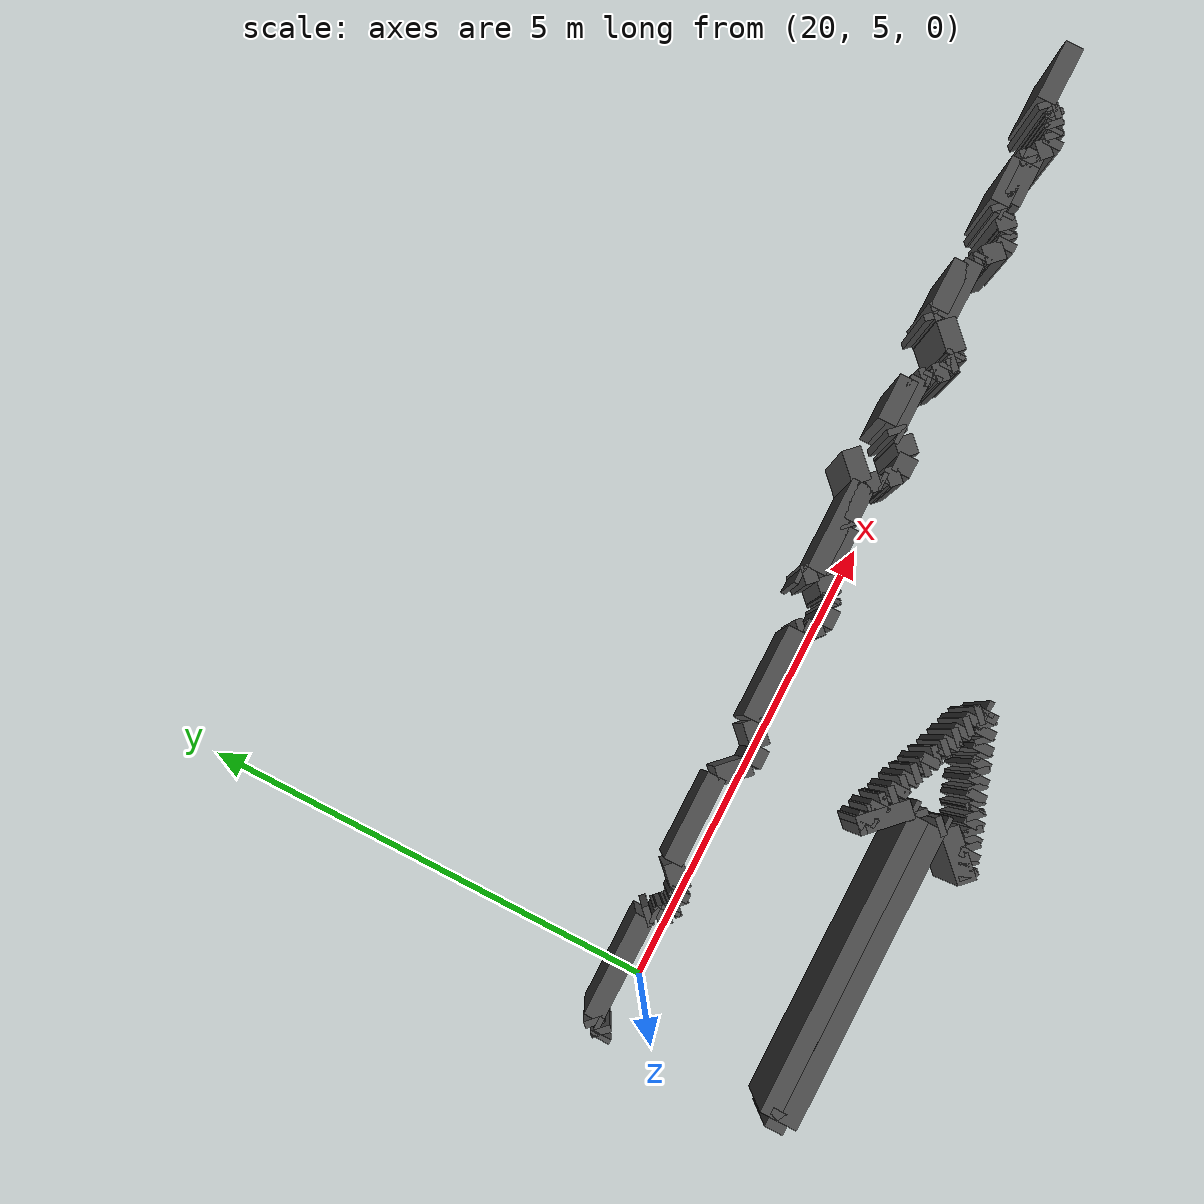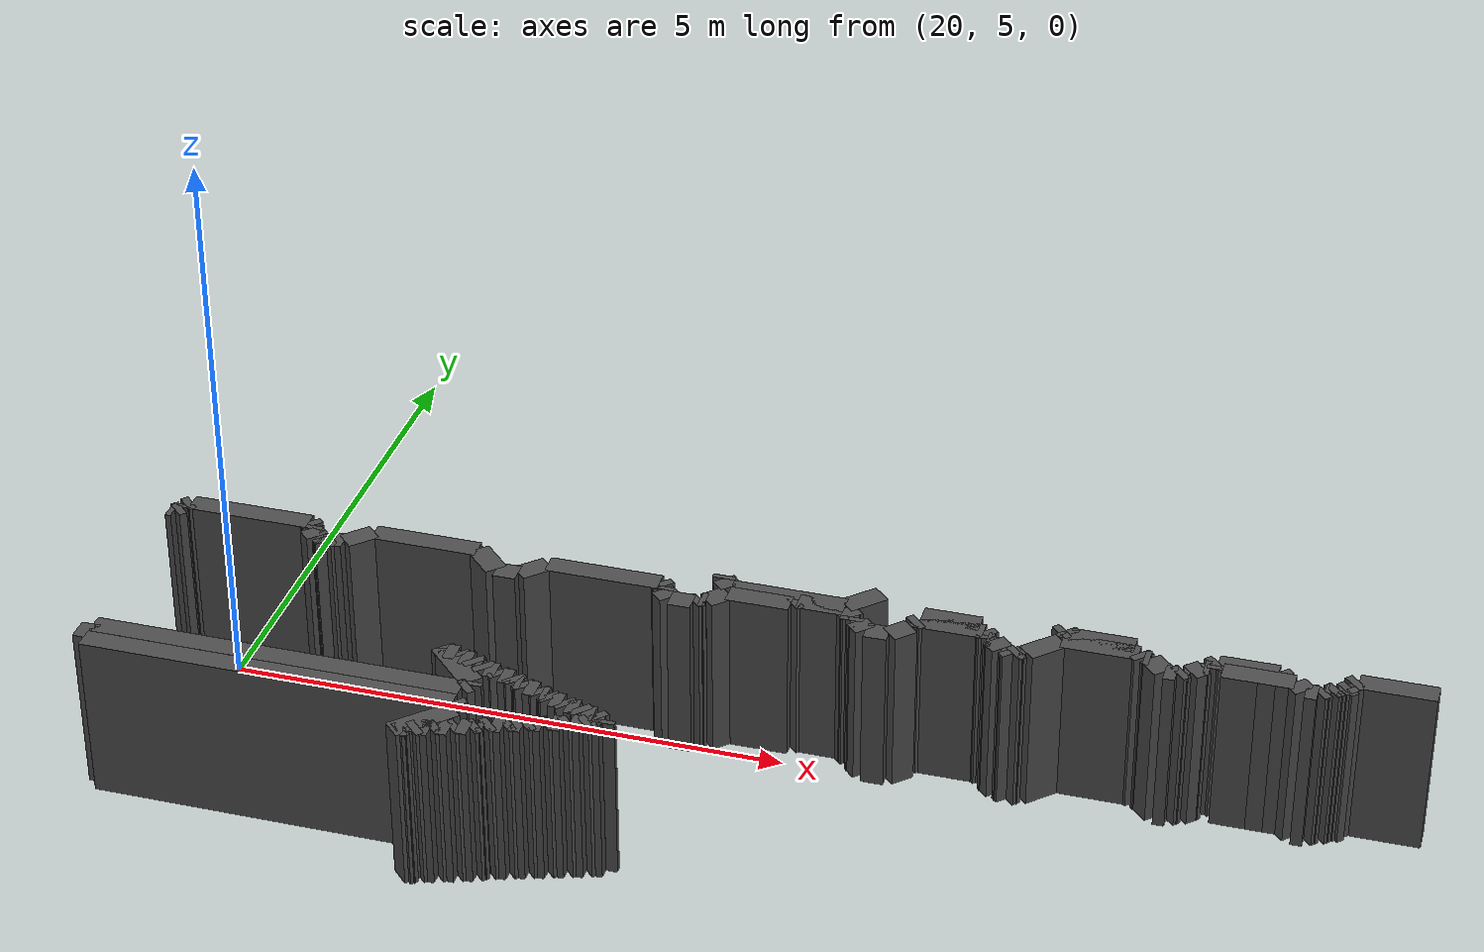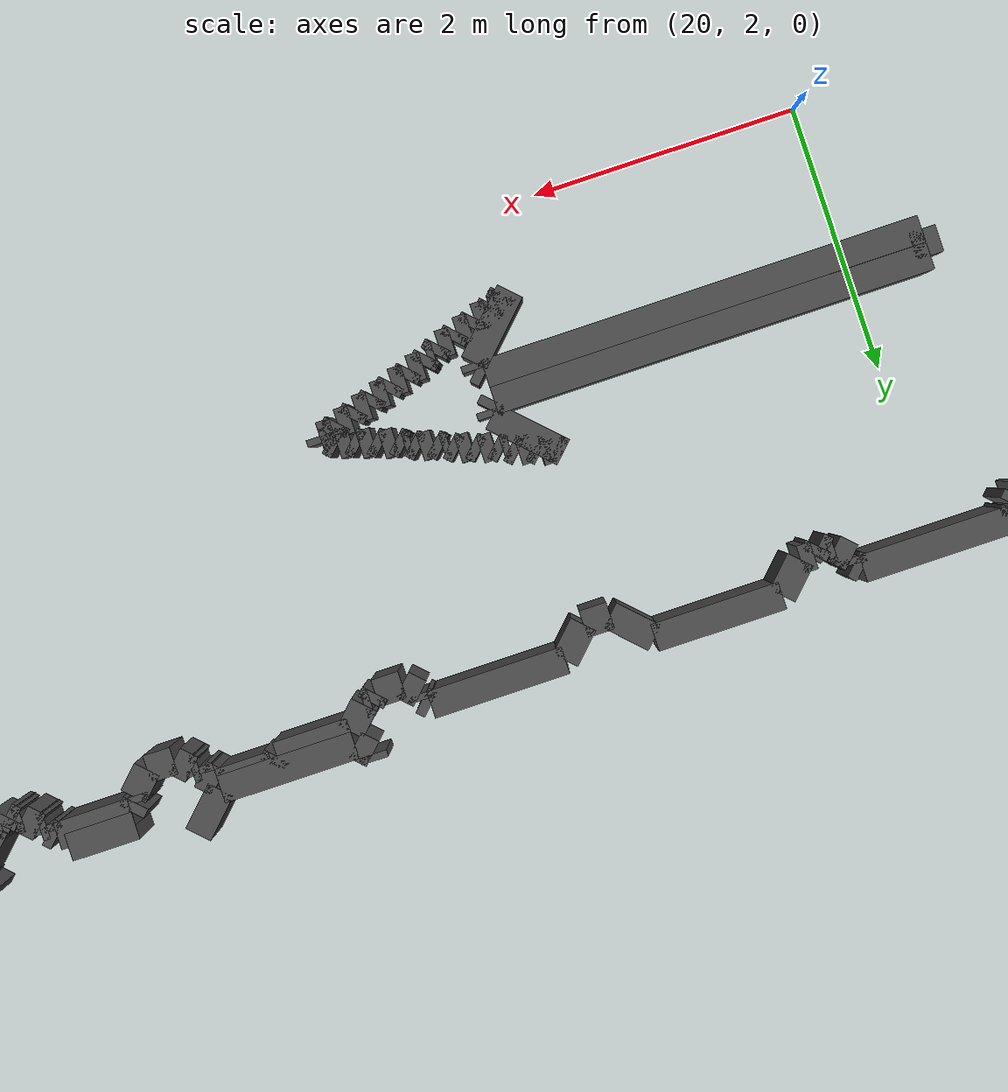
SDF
<sdf version="1.9">
 <model name="generated_walls">
  <static>true</static>
  <link name="wall_161_1307">
   <pose>24.350 5.475 0.75 0 0 -1.571</pose>
   <collision name="collision"><geometry><box><size>0.050 0.2 1.5</size></box></geometry></collision>
   <visual name="visual">
    <geometry><box><size>0.050 0.2 1.5</size></box></geometry>
    <material><ambient>0.3 0.3 0.3 1</ambient></material>
   </visual>
  </link>
  <link name="wall_161_1308">
   <pose>24.400 5.400 0.75 0 0 -0.785</pose>
   <collision name="collision"><geometry><box><size>0.141 0.2 1.5</size></box></geometry></collision>
   <visual name="visual">
    <geometry><box><size>0.141 0.2 1.5</size></box></geometry>
    <material><ambient>0.3 0.3 0.3 1</ambient></material>
   </visual>
  </link>
  <link name="wall_161_1309">
   <pose>24.950 5.350 0.75 0 0 0.000</pose>
   <collision name="collision"><geometry><box><size>1.000 0.2 1.5</size></box></geometry></collision>
   <visual name="visual">
    <geometry><box><size>1.000 0.2 1.5</size></box></geometry>
    <material><ambient>0.3 0.3 0.3 1</ambient></material>
   </visual>
  </link>
  <link name="wall_161_1310">
   <pose>25.575 5.475 0.75 0 0 0.785</pose>
   <collision name="collision"><geometry><box><size>0.354 0.2 1.5</size></box></geometry></collision>
   <visual name="visual">
    <geometry><box><size>0.354 0.2 1.5</size></box></geometry>
    <material><ambient>0.3 0.3 0.3 1</ambient></material>
   </visual>
  </link>
  <link name="wall_161_1313">
   <pose>26.350 5.400 0.75 0 0 0.000</pose>
   <collision name="collision"><geometry><box><size>0.500 0.2 1.5</size></box></geometry></collision>
   <visual name="visual">
    <geometry><box><size>0.500 0.2 1.5</size></box></geometry>
    <material><ambient>0.3 0.3 0.3 1</ambient></material>
   </visual>
  </link>
  <link name="wall_161_1321">
   <pose>27.275 5.475 0.75 0 0 0.785</pose>
   <collision name="collision"><geometry><box><size>0.071 0.2 1.5</size></box></geometry></collision>
   <visual name="visual">
    <geometry><box><size>0.071 0.2 1.5</size></box></geometry>
    <material><ambient>0.3 0.3 0.3 1</ambient></material>
   </visual>
  </link>
  <link name="wall_161_1322">
   <pose>27.325 5.475 0.75 0 0 -0.785</pose>
   <collision name="collision"><geometry><box><size>0.071 0.2 1.5</size></box></geometry></collision>
   <visual name="visual">
    <geometry><box><size>0.071 0.2 1.5</size></box></geometry>
    <material><ambient>0.3 0.3 0.3 1</ambient></material>
   </visual>
  </link>
  <link name="wall_161_1323">
   <pose>27.625 5.450 0.75 0 0 0.000</pose>
   <collision name="collision"><geometry><box><size>0.550 0.2 1.5</size></box></geometry></collision>
   <visual name="visual">
    <geometry><box><size>0.550 0.2 1.5</size></box></geometry>
    <material><ambient>0.3 0.3 0.3 1</ambient></material>
   </visual>
  </link>
  <link name="wall_161_2832">
   <pose>30.075 5.450 0.75 0 0 3.142</pose>
   <collision name="collision"><geometry><box><size>0.650 0.2 1.5</size></box></geometry></collision>
   <visual name="visual">
    <geometry><box><size>0.650 0.2 1.5</size></box></geometry>
    <material><ambient>0.3 0.3 0.3 1</ambient></material>
   </visual>
  </link>
  <link name="wall_161_2833">
   <pose>29.725 5.425 0.75 0 0 -2.356</pose>
   <collision name="collision"><geometry><box><size>0.071 0.2 1.5</size></box></geometry></collision>
   <visual name="visual">
    <geometry><box><size>0.071 0.2 1.5</size></box></geometry>
    <material><ambient>0.3 0.3 0.3 1</ambient></material>
   </visual>
  </link>
  <link name="wall_161_2834">
   <pose>29.700 5.375 0.75 0 0 -1.571</pose>
   <collision name="collision"><geometry><box><size>0.050 0.2 1.5</size></box></geometry></collision>
   <visual name="visual">
    <geometry><box><size>0.050 0.2 1.5</size></box></geometry>
    <material><ambient>0.3 0.3 0.3 1</ambient></material>
   </visual>
  </link>
  <link name="wall_161_2835">
   <pose>29.725 5.325 0.75 0 0 -0.785</pose>
   <collision name="collision"><geometry><box><size>0.071 0.2 1.5</size></box></geometry></collision>
   <visual name="visual">
    <geometry><box><size>0.071 0.2 1.5</size></box></geometry>
    <material><ambient>0.3 0.3 0.3 1</ambient></material>
   </visual>
  </link>
  <link name="wall_161_2836">
   <pose>29.725 5.325 0.75 0 0 2.356</pose>
   <collision name="collision"><geometry><box><size>0.071 0.2 1.5</size></box></geometry></collision>
   <visual name="visual">
    <geometry><box><size>0.071 0.2 1.5</size></box></geometry>
    <material><ambient>0.3 0.3 0.3 1</ambient></material>
   </visual>
  </link>
  <link name="wall_161_2837">
   <pose>29.675 5.325 0.75 0 0 -2.356</pose>
   <collision name="collision"><geometry><box><size>0.071 0.2 1.5</size></box></geometry></collision>
   <visual name="visual">
    <geometry><box><size>0.071 0.2 1.5</size></box></geometry>
    <material><ambient>0.3 0.3 0.3 1</ambient></material>
   </visual>
  </link>
  <link name="wall_161_2838">
   <pose>29.625 5.300 0.75 0 0 3.142</pose>
   <collision name="collision"><geometry><box><size>0.050 0.2 1.5</size></box></geometry></collision>
   <visual name="visual">
    <geometry><box><size>0.050 0.2 1.5</size></box></geometry>
    <material><ambient>0.3 0.3 0.3 1</ambient></material>
   </visual>
  </link>
  <link name="wall_161_2839">
   <pose>29.575 5.275 0.75 0 0 -2.356</pose>
   <collision name="collision"><geometry><box><size>0.071 0.2 1.5</size></box></geometry></collision>
   <visual name="visual">
    <geometry><box><size>0.071 0.2 1.5</size></box></geometry>
    <material><ambient>0.3 0.3 0.3 1</ambient></material>
   </visual>
  </link>
  <link name="wall_161_2840">
   <pose>29.525 5.250 0.75 0 0 3.142</pose>
   <collision name="collision"><geometry><box><size>0.050 0.2 1.5</size></box></geometry></collision>
   <visual name="visual">
    <geometry><box><size>0.050 0.2 1.5</size></box></geometry>
    <material><ambient>0.3 0.3 0.3 1</ambient></material>
   </visual>
  </link>
  <link name="wall_161_2841">
   <pose>29.475 5.225 0.75 0 0 -2.356</pose>
   <collision name="collision"><geometry><box><size>0.071 0.2 1.5</size></box></geometry></collision>
   <visual name="visual">
    <geometry><box><size>0.071 0.2 1.5</size></box></geometry>
    <material><ambient>0.3 0.3 0.3 1</ambient></material>
   </visual>
  </link>
  <link name="wall_161_2842">
   <pose>29.400 5.200 0.75 0 0 3.142</pose>
   <collision name="collision"><geometry><box><size>0.100 0.2 1.5</size></box></geometry></collision>
   <visual name="visual">
    <geometry><box><size>0.100 0.2 1.5</size></box></geometry>
    <material><ambient>0.3 0.3 0.3 1</ambient></material>
   </visual>
  </link>
  <link name="wall_161_2843">
   <pose>29.300 5.250 0.75 0 0 2.356</pose>
   <collision name="collision"><geometry><box><size>0.141 0.2 1.5</size></box></geometry></collision>
   <visual name="visual">
    <geometry><box><size>0.141 0.2 1.5</size></box></geometry>
    <material><ambient>0.3 0.3 0.3 1</ambient></material>
   </visual>
  </link>
  <link name="wall_161_2844">
   <pose>28.950 5.300 0.75 0 0 3.142</pose>
   <collision name="collision"><geometry><box><size>0.600 0.2 1.5</size></box></geometry></collision>
   <visual name="visual">
    <geometry><box><size>0.600 0.2 1.5</size></box></geometry>
    <material><ambient>0.3 0.3 0.3 1</ambient></material>
   </visual>
  </link>
  <link name="wall_161_2845">
   <pose>28.875 5.300 0.75 0 0 0.000</pose>
   <collision name="collision"><geometry><box><size>0.450 0.2 1.5</size></box></geometry></collision>
   <visual name="visual">
    <geometry><box><size>0.450 0.2 1.5</size></box></geometry>
    <material><ambient>0.3 0.3 0.3 1</ambient></material>
   </visual>
  </link>
  <link name="wall_161_2846">
   <pose>29.125 5.325 0.75 0 0 0.785</pose>
   <collision name="collision"><geometry><box><size>0.071 0.2 1.5</size></box></geometry></collision>
   <visual name="visual">
    <geometry><box><size>0.071 0.2 1.5</size></box></geometry>
    <material><ambient>0.3 0.3 0.3 1</ambient></material>
   </visual>
  </link>
  <link name="wall_161_2847">
   <pose>29.125 5.375 0.75 0 0 2.356</pose>
   <collision name="collision"><geometry><box><size>0.071 0.2 1.5</size></box></geometry></collision>
   <visual name="visual">
    <geometry><box><size>0.071 0.2 1.5</size></box></geometry>
    <material><ambient>0.3 0.3 0.3 1</ambient></material>
   </visual>
  </link>
  <link name="wall_161_2848">
   <pose>28.850 5.400 0.75 0 0 3.142</pose>
   <collision name="collision"><geometry><box><size>0.500 0.2 1.5</size></box></geometry></collision>
   <visual name="visual">
    <geometry><box><size>0.500 0.2 1.5</size></box></geometry>
    <material><ambient>0.3 0.3 0.3 1</ambient></material>
   </visual>
  </link>
  <link name="wall_161_2849">
   <pose>28.575 5.375 0.75 0 0 -2.356</pose>
   <collision name="collision"><geometry><box><size>0.071 0.2 1.5</size></box></geometry></collision>
   <visual name="visual">
    <geometry><box><size>0.071 0.2 1.5</size></box></geometry>
    <material><ambient>0.3 0.3 0.3 1</ambient></material>
   </visual>
  </link>
  <link name="wall_161_2850">
   <pose>28.550 5.325 0.75 0 0 -1.571</pose>
   <collision name="collision"><geometry><box><size>0.050 0.2 1.5</size></box></geometry></collision>
   <visual name="visual">
    <geometry><box><size>0.050 0.2 1.5</size></box></geometry>
    <material><ambient>0.3 0.3 0.3 1</ambient></material>
   </visual>
  </link>
  <link name="wall_161_2851">
   <pose>28.525 5.300 0.75 0 0 3.142</pose>
   <collision name="collision"><geometry><box><size>0.050 0.2 1.5</size></box></geometry></collision>
   <visual name="visual">
    <geometry><box><size>0.050 0.2 1.5</size></box></geometry>
    <material><ambient>0.3 0.3 0.3 1</ambient></material>
   </visual>
  </link>
  <link name="wall_161_2852">
   <pose>28.450 5.250 0.75 0 0 -2.356</pose>
   <collision name="collision"><geometry><box><size>0.141 0.2 1.5</size></box></geometry></collision>
   <visual name="visual">
    <geometry><box><size>0.141 0.2 1.5</size></box></geometry>
    <material><ambient>0.3 0.3 0.3 1</ambient></material>
   </visual>
  </link>
  <link name="wall_161_2853">
   <pose>28.375 5.200 0.75 0 0 3.142</pose>
   <collision name="collision"><geometry><box><size>0.050 0.2 1.5</size></box></geometry></collision>
   <visual name="visual">
    <geometry><box><size>0.050 0.2 1.5</size></box></geometry>
    <material><ambient>0.3 0.3 0.3 1</ambient></material>
   </visual>
  </link>
  <link name="wall_161_2854">
   <pose>28.325 5.175 0.75 0 0 -2.356</pose>
   <collision name="collision"><geometry><box><size>0.071 0.2 1.5</size></box></geometry></collision>
   <visual name="visual">
    <geometry><box><size>0.071 0.2 1.5</size></box></geometry>
    <material><ambient>0.3 0.3 0.3 1</ambient></material>
   </visual>
  </link>
  <link name="wall_161_2855">
   <pose>28.250 5.150 0.75 0 0 3.142</pose>
   <collision name="collision"><geometry><box><size>0.100 0.2 1.5</size></box></geometry></collision>
   <visual name="visual">
    <geometry><box><size>0.100 0.2 1.5</size></box></geometry>
    <material><ambient>0.3 0.3 0.3 1</ambient></material>
   </visual>
  </link>
  <link name="wall_161_2856">
   <pose>28.125 5.225 0.75 0 0 2.356</pose>
   <collision name="collision"><geometry><box><size>0.212 0.2 1.5</size></box></geometry></collision>
   <visual name="visual">
    <geometry><box><size>0.212 0.2 1.5</size></box></geometry>
    <material><ambient>0.3 0.3 0.3 1</ambient></material>
   </visual>
  </link>
  <link name="wall_161_2857">
   <pose>28.025 5.300 0.75 0 0 3.142</pose>
   <collision name="collision"><geometry><box><size>0.050 0.2 1.5</size></box></geometry></collision>
   <visual name="visual">
    <geometry><box><size>0.050 0.2 1.5</size></box></geometry>
    <material><ambient>0.3 0.3 0.3 1</ambient></material>
   </visual>
  </link>
  <link name="wall_161_2858">
   <pose>27.975 5.325 0.75 0 0 2.356</pose>
   <collision name="collision"><geometry><box><size>0.071 0.2 1.5</size></box></geometry></collision>
   <visual name="visual">
    <geometry><box><size>0.071 0.2 1.5</size></box></geometry>
    <material><ambient>0.3 0.3 0.3 1</ambient></material>
   </visual>
  </link>
  <link name="wall_161_2859">
   <pose>27.625 5.350 0.75 0 0 3.142</pose>
   <collision name="collision"><geometry><box><size>0.650 0.2 1.5</size></box></geometry></collision>
   <visual name="visual">
    <geometry><box><size>0.650 0.2 1.5</size></box></geometry>
    <material><ambient>0.3 0.3 0.3 1</ambient></material>
   </visual>
  </link>
  <link name="wall_161_2860">
   <pose>27.175 5.225 0.75 0 0 -2.356</pose>
   <collision name="collision"><geometry><box><size>0.354 0.2 1.5</size></box></geometry></collision>
   <visual name="visual">
    <geometry><box><size>0.354 0.2 1.5</size></box></geometry>
    <material><ambient>0.3 0.3 0.3 1</ambient></material>
   </visual>
  </link>
  <link name="wall_161_2861">
   <pose>27.025 5.100 0.75 0 0 3.142</pose>
   <collision name="collision"><geometry><box><size>0.050 0.2 1.5</size></box></geometry></collision>
   <visual name="visual">
    <geometry><box><size>0.050 0.2 1.5</size></box></geometry>
    <material><ambient>0.3 0.3 0.3 1</ambient></material>
   </visual>
  </link>
  <link name="wall_161_2862">
   <pose>26.975 5.075 0.75 0 0 -2.356</pose>
   <collision name="collision"><geometry><box><size>0.071 0.2 1.5</size></box></geometry></collision>
   <visual name="visual">
    <geometry><box><size>0.071 0.2 1.5</size></box></geometry>
    <material><ambient>0.3 0.3 0.3 1</ambient></material>
   </visual>
  </link>
  <link name="wall_161_2863">
   <pose>26.925 5.075 0.75 0 0 2.356</pose>
   <collision name="collision"><geometry><box><size>0.071 0.2 1.5</size></box></geometry></collision>
   <visual name="visual">
    <geometry><box><size>0.071 0.2 1.5</size></box></geometry>
    <material><ambient>0.3 0.3 0.3 1</ambient></material>
   </visual>
  </link>
  <link name="wall_161_2864">
   <pose>26.875 5.100 0.75 0 0 3.142</pose>
   <collision name="collision"><geometry><box><size>0.050 0.2 1.5</size></box></geometry></collision>
   <visual name="visual">
    <geometry><box><size>0.050 0.2 1.5</size></box></geometry>
    <material><ambient>0.3 0.3 0.3 1</ambient></material>
   </visual>
  </link>
  <link name="wall_161_2865">
   <pose>26.800 5.150 0.75 0 0 2.356</pose>
   <collision name="collision"><geometry><box><size>0.141 0.2 1.5</size></box></geometry></collision>
   <visual name="visual">
    <geometry><box><size>0.141 0.2 1.5</size></box></geometry>
    <material><ambient>0.3 0.3 0.3 1</ambient></material>
   </visual>
  </link>
  <link name="wall_161_2866">
   <pose>26.725 5.200 0.75 0 0 3.142</pose>
   <collision name="collision"><geometry><box><size>0.050 0.2 1.5</size></box></geometry></collision>
   <visual name="visual">
    <geometry><box><size>0.050 0.2 1.5</size></box></geometry>
    <material><ambient>0.3 0.3 0.3 1</ambient></material>
   </visual>
  </link>
  <link name="wall_161_2867">
   <pose>26.700 5.225 0.75 0 0 1.571</pose>
   <collision name="collision"><geometry><box><size>0.050 0.2 1.5</size></box></geometry></collision>
   <visual name="visual">
    <geometry><box><size>0.050 0.2 1.5</size></box></geometry>
    <material><ambient>0.3 0.3 0.3 1</ambient></material>
   </visual>
  </link>
  <link name="wall_161_2868">
   <pose>26.675 5.275 0.75 0 0 2.356</pose>
   <collision name="collision"><geometry><box><size>0.071 0.2 1.5</size></box></geometry></collision>
   <visual name="visual">
    <geometry><box><size>0.071 0.2 1.5</size></box></geometry>
    <material><ambient>0.3 0.3 0.3 1</ambient></material>
   </visual>
  </link>
  <link name="wall_161_2869">
   <pose>26.375 5.300 0.75 0 0 3.142</pose>
   <collision name="collision"><geometry><box><size>0.550 0.2 1.5</size></box></geometry></collision>
   <visual name="visual">
    <geometry><box><size>0.550 0.2 1.5</size></box></geometry>
    <material><ambient>0.3 0.3 0.3 1</ambient></material>
   </visual>
  </link>
  <link name="wall_161_2870">
   <pose>26.075 5.275 0.75 0 0 -2.356</pose>
   <collision name="collision"><geometry><box><size>0.071 0.2 1.5</size></box></geometry></collision>
   <visual name="visual">
    <geometry><box><size>0.071 0.2 1.5</size></box></geometry>
    <material><ambient>0.3 0.3 0.3 1</ambient></material>
   </visual>
  </link>
  <link name="wall_161_2871">
   <pose>26.050 5.225 0.75 0 0 -1.571</pose>
   <collision name="collision"><geometry><box><size>0.050 0.2 1.5</size></box></geometry></collision>
   <visual name="visual">
    <geometry><box><size>0.050 0.2 1.5</size></box></geometry>
    <material><ambient>0.3 0.3 0.3 1</ambient></material>
   </visual>
  </link>
  <link name="wall_161_2872">
   <pose>25.975 5.125 0.75 0 0 -2.356</pose>
   <collision name="collision"><geometry><box><size>0.212 0.2 1.5</size></box></geometry></collision>
   <visual name="visual">
    <geometry><box><size>0.212 0.2 1.5</size></box></geometry>
    <material><ambient>0.3 0.3 0.3 1</ambient></material>
   </visual>
  </link>
  <link name="wall_161_2873">
   <pose>25.800 5.050 0.75 0 0 3.142</pose>
   <collision name="collision"><geometry><box><size>0.200 0.2 1.5</size></box></geometry></collision>
   <visual name="visual">
    <geometry><box><size>0.200 0.2 1.5</size></box></geometry>
    <material><ambient>0.3 0.3 0.3 1</ambient></material>
   </visual>
  </link>
  <link name="wall_161_2874">
   <pose>25.650 5.100 0.75 0 0 2.356</pose>
   <collision name="collision"><geometry><box><size>0.141 0.2 1.5</size></box></geometry></collision>
   <visual name="visual">
    <geometry><box><size>0.141 0.2 1.5</size></box></geometry>
    <material><ambient>0.3 0.3 0.3 1</ambient></material>
   </visual>
  </link>
  <link name="wall_161_2875">
   <pose>25.575 5.150 0.75 0 0 3.142</pose>
   <collision name="collision"><geometry><box><size>0.050 0.2 1.5</size></box></geometry></collision>
   <visual name="visual">
    <geometry><box><size>0.050 0.2 1.5</size></box></geometry>
    <material><ambient>0.3 0.3 0.3 1</ambient></material>
   </visual>
  </link>
  <link name="wall_161_2876">
   <pose>25.550 5.175 0.75 0 0 1.571</pose>
   <collision name="collision"><geometry><box><size>0.050 0.2 1.5</size></box></geometry></collision>
   <visual name="visual">
    <geometry><box><size>0.050 0.2 1.5</size></box></geometry>
    <material><ambient>0.3 0.3 0.3 1</ambient></material>
   </visual>
  </link>
  <link name="wall_161_2877">
   <pose>25.500 5.250 0.75 0 0 2.356</pose>
   <collision name="collision"><geometry><box><size>0.141 0.2 1.5</size></box></geometry></collision>
   <visual name="visual">
    <geometry><box><size>0.141 0.2 1.5</size></box></geometry>
    <material><ambient>0.3 0.3 0.3 1</ambient></material>
   </visual>
  </link>
  <link name="wall_161_2878">
   <pose>25.250 5.300 0.75 0 0 3.142</pose>
   <collision name="collision"><geometry><box><size>0.400 0.2 1.5</size></box></geometry></collision>
   <visual name="visual">
    <geometry><box><size>0.400 0.2 1.5</size></box></geometry>
    <material><ambient>0.3 0.3 0.3 1</ambient></material>
   </visual>
  </link>
  <link name="wall_161_2879">
   <pose>25.025 5.275 0.75 0 0 -2.356</pose>
   <collision name="collision"><geometry><box><size>0.071 0.2 1.5</size></box></geometry></collision>
   <visual name="visual">
    <geometry><box><size>0.071 0.2 1.5</size></box></geometry>
    <material><ambient>0.3 0.3 0.3 1</ambient></material>
   </visual>
  </link>
  <link name="wall_161_2880">
   <pose>24.725 5.250 0.75 0 0 3.142</pose>
   <collision name="collision"><geometry><box><size>0.550 0.2 1.5</size></box></geometry></collision>
   <visual name="visual">
    <geometry><box><size>0.550 0.2 1.5</size></box></geometry>
    <material><ambient>0.3 0.3 0.3 1</ambient></material>
   </visual>
  </link>
  <link name="wall_161_2881">
   <pose>24.375 5.175 0.75 0 0 -2.356</pose>
   <collision name="collision"><geometry><box><size>0.212 0.2 1.5</size></box></geometry></collision>
   <visual name="visual">
    <geometry><box><size>0.212 0.2 1.5</size></box></geometry>
    <material><ambient>0.3 0.3 0.3 1</ambient></material>
   </visual>
  </link>
  <link name="wall_161_2882">
   <pose>24.275 5.100 0.75 0 0 3.142</pose>
   <collision name="collision"><geometry><box><size>0.050 0.2 1.5</size></box></geometry></collision>
   <visual name="visual">
    <geometry><box><size>0.050 0.2 1.5</size></box></geometry>
    <material><ambient>0.3 0.3 0.3 1</ambient></material>
   </visual>
  </link>
  <link name="wall_161_2883">
   <pose>24.225 5.075 0.75 0 0 -2.356</pose>
   <collision name="collision"><geometry><box><size>0.071 0.2 1.5</size></box></geometry></collision>
   <visual name="visual">
    <geometry><box><size>0.071 0.2 1.5</size></box></geometry>
    <material><ambient>0.3 0.3 0.3 1</ambient></material>
   </visual>
  </link>
  <link name="wall_161_2884">
   <pose>24.100 5.050 0.75 0 0 3.142</pose>
   <collision name="collision"><geometry><box><size>0.200 0.2 1.5</size></box></geometry></collision>
   <visual name="visual">
    <geometry><box><size>0.200 0.2 1.5</size></box></geometry>
    <material><ambient>0.3 0.3 0.3 1</ambient></material>
   </visual>
  </link>
  <link name="wall_161_2885">
   <pose>23.950 5.100 0.75 0 0 2.356</pose>
   <collision name="collision"><geometry><box><size>0.141 0.2 1.5</size></box></geometry></collision>
   <visual name="visual">
    <geometry><box><size>0.141 0.2 1.5</size></box></geometry>
    <material><ambient>0.3 0.3 0.3 1</ambient></material>
   </visual>
  </link>
  <link name="wall_161_2886">
   <pose>23.900 5.175 0.75 0 0 1.571</pose>
   <collision name="collision"><geometry><box><size>0.050 0.2 1.5</size></box></geometry></collision>
   <visual name="visual">
    <geometry><box><size>0.050 0.2 1.5</size></box></geometry>
    <material><ambient>0.3 0.3 0.3 1</ambient></material>
   </visual>
  </link>
  <link name="wall_161_2887">
   <pose>23.875 5.225 0.75 0 0 2.356</pose>
   <collision name="collision"><geometry><box><size>0.071 0.2 1.5</size></box></geometry></collision>
   <visual name="visual">
    <geometry><box><size>0.071 0.2 1.5</size></box></geometry>
    <material><ambient>0.3 0.3 0.3 1</ambient></material>
   </visual>
  </link>
  <link name="wall_161_2888">
   <pose>23.350 5.250 0.75 0 0 3.142</pose>
   <collision name="collision"><geometry><box><size>1.000 0.2 1.5</size></box></geometry></collision>
   <visual name="visual">
    <geometry><box><size>1.000 0.2 1.5</size></box></geometry>
    <material><ambient>0.3 0.3 0.3 1</ambient></material>
   </visual>
  </link>
  <link name="wall_161_2889">
   <pose>22.750 5.150 0.75 0 0 -2.356</pose>
   <collision name="collision"><geometry><box><size>0.283 0.2 1.5</size></box></geometry></collision>
   <visual name="visual">
    <geometry><box><size>0.283 0.2 1.5</size></box></geometry>
    <material><ambient>0.3 0.3 0.3 1</ambient></material>
   </visual>
  </link>
  <link name="wall_161_2890">
   <pose>22.550 5.050 0.75 0 0 3.142</pose>
   <collision name="collision"><geometry><box><size>0.200 0.2 1.5</size></box></geometry></collision>
   <visual name="visual">
    <geometry><box><size>0.200 0.2 1.5</size></box></geometry>
    <material><ambient>0.3 0.3 0.3 1</ambient></material>
   </visual>
  </link>
  <link name="wall_161_2891">
   <pose>22.325 5.175 0.75 0 0 2.356</pose>
   <collision name="collision"><geometry><box><size>0.354 0.2 1.5</size></box></geometry></collision>
   <visual name="visual">
    <geometry><box><size>0.354 0.2 1.5</size></box></geometry>
    <material><ambient>0.3 0.3 0.3 1</ambient></material>
   </visual>
  </link>
  <link name="wall_161_2892">
   <pose>21.725 5.300 0.75 0 0 3.142</pose>
   <collision name="collision"><geometry><box><size>0.950 0.2 1.5</size></box></geometry></collision>
   <visual name="visual">
    <geometry><box><size>0.950 0.2 1.5</size></box></geometry>
    <material><ambient>0.3 0.3 0.3 1</ambient></material>
   </visual>
  </link>
  <link name="wall_161_2893">
   <pose>21.150 5.200 0.75 0 0 -2.356</pose>
   <collision name="collision"><geometry><box><size>0.283 0.2 1.5</size></box></geometry></collision>
   <visual name="visual">
    <geometry><box><size>0.283 0.2 1.5</size></box></geometry>
    <material><ambient>0.3 0.3 0.3 1</ambient></material>
   </visual>
  </link>
  <link name="wall_161_2894">
   <pose>21.000 5.100 0.75 0 0 3.142</pose>
   <collision name="collision"><geometry><box><size>0.100 0.2 1.5</size></box></geometry></collision>
   <visual name="visual">
    <geometry><box><size>0.100 0.2 1.5</size></box></geometry>
    <material><ambient>0.3 0.3 0.3 1</ambient></material>
   </visual>
  </link>
  <link name="wall_161_2895">
   <pose>20.925 5.075 0.75 0 0 -2.356</pose>
   <collision name="collision"><geometry><box><size>0.071 0.2 1.5</size></box></geometry></collision>
   <visual name="visual">
    <geometry><box><size>0.071 0.2 1.5</size></box></geometry>
    <material><ambient>0.3 0.3 0.3 1</ambient></material>
   </visual>
  </link>
  <link name="wall_161_2896">
   <pose>20.875 5.075 0.75 0 0 2.356</pose>
   <collision name="collision"><geometry><box><size>0.071 0.2 1.5</size></box></geometry></collision>
   <visual name="visual">
    <geometry><box><size>0.071 0.2 1.5</size></box></geometry>
    <material><ambient>0.3 0.3 0.3 1</ambient></material>
   </visual>
  </link>
  <link name="wall_161_2897">
   <pose>20.825 5.100 0.75 0 0 3.142</pose>
   <collision name="collision"><geometry><box><size>0.050 0.2 1.5</size></box></geometry></collision>
   <visual name="visual">
    <geometry><box><size>0.050 0.2 1.5</size></box></geometry>
    <material><ambient>0.3 0.3 0.3 1</ambient></material>
   </visual>
  </link>
  <link name="wall_161_2898">
   <pose>20.750 5.150 0.75 0 0 2.356</pose>
   <collision name="collision"><geometry><box><size>0.141 0.2 1.5</size></box></geometry></collision>
   <visual name="visual">
    <geometry><box><size>0.141 0.2 1.5</size></box></geometry>
    <material><ambient>0.3 0.3 0.3 1</ambient></material>
   </visual>
  </link>
  <link name="wall_161_2899">
   <pose>20.700 5.225 0.75 0 0 1.571</pose>
   <collision name="collision"><geometry><box><size>0.050 0.2 1.5</size></box></geometry></collision>
   <visual name="visual">
    <geometry><box><size>0.050 0.2 1.5</size></box></geometry>
    <material><ambient>0.3 0.3 0.3 1</ambient></material>
   </visual>
  </link>
  <link name="wall_161_2900">
   <pose>20.675 5.275 0.75 0 0 2.356</pose>
   <collision name="collision"><geometry><box><size>0.071 0.2 1.5</size></box></geometry></collision>
   <visual name="visual">
    <geometry><box><size>0.071 0.2 1.5</size></box></geometry>
    <material><ambient>0.3 0.3 0.3 1</ambient></material>
   </visual>
  </link>
  <link name="wall_161_2901">
   <pose>20.100 5.300 0.75 0 0 3.142</pose>
   <collision name="collision"><geometry><box><size>1.100 0.2 1.5</size></box></geometry></collision>
   <visual name="visual">
    <geometry><box><size>1.100 0.2 1.5</size></box></geometry>
    <material><ambient>0.3 0.3 0.3 1</ambient></material>
   </visual>
  </link>
  <link name="wall_161_2902">
   <pose>19.525 5.275 0.75 0 0 -2.356</pose>
   <collision name="collision"><geometry><box><size>0.071 0.2 1.5</size></box></geometry></collision>
   <visual name="visual">
    <geometry><box><size>0.071 0.2 1.5</size></box></geometry>
    <material><ambient>0.3 0.3 0.3 1</ambient></material>
   </visual>
  </link>
  <link name="wall_161_2903">
   <pose>19.500 5.225 0.75 0 0 -1.571</pose>
   <collision name="collision"><geometry><box><size>0.050 0.2 1.5</size></box></geometry></collision>
   <visual name="visual">
    <geometry><box><size>0.050 0.2 1.5</size></box></geometry>
    <material><ambient>0.3 0.3 0.3 1</ambient></material>
   </visual>
  </link>
  <link name="wall_161_2904">
   <pose>19.475 5.175 0.75 0 0 -2.356</pose>
   <collision name="collision"><geometry><box><size>0.071 0.2 1.5</size></box></geometry></collision>
   <visual name="visual">
    <geometry><box><size>0.071 0.2 1.5</size></box></geometry>
    <material><ambient>0.3 0.3 0.3 1</ambient></material>
   </visual>
  </link>
  <link name="wall_161_2905">
   <pose>19.425 5.150 0.75 0 0 3.142</pose>
   <collision name="collision"><geometry><box><size>0.050 0.2 1.5</size></box></geometry></collision>
   <visual name="visual">
    <geometry><box><size>0.050 0.2 1.5</size></box></geometry>
    <material><ambient>0.3 0.3 0.3 1</ambient></material>
   </visual>
  </link>
  <link name="wall_162_0">
   <pose>22.600 2.850 0.75 0 0 0.785</pose>
   <collision name="collision"><geometry><box><size>0.566 0.2 1.5</size></box></geometry></collision>
   <visual name="visual">
    <geometry><box><size>0.566 0.2 1.5</size></box></geometry>
    <material><ambient>0.3 0.3 0.3 1</ambient></material>
   </visual>
  </link>
  <link name="wall_162_1">
   <pose>22.800 3.075 0.75 0 0 1.571</pose>
   <collision name="collision"><geometry><box><size>0.050 0.2 1.5</size></box></geometry></collision>
   <visual name="visual">
    <geometry><box><size>0.050 0.2 1.5</size></box></geometry>
    <material><ambient>0.3 0.3 0.3 1</ambient></material>
   </visual>
  </link>
  <link name="wall_162_2">
   <pose>22.775 3.125 0.75 0 0 2.356</pose>
   <collision name="collision"><geometry><box><size>0.071 0.2 1.5</size></box></geometry></collision>
   <visual name="visual">
    <geometry><box><size>0.071 0.2 1.5</size></box></geometry>
    <material><ambient>0.3 0.3 0.3 1</ambient></material>
   </visual>
  </link>
  <link name="wall_162_3">
   <pose>21.125 3.150 0.75 0 0 3.142</pose>
   <collision name="collision"><geometry><box><size>3.250 0.2 1.5</size></box></geometry></collision>
   <visual name="visual">
    <geometry><box><size>3.250 0.2 1.5</size></box></geometry>
    <material><ambient>0.3 0.3 0.3 1</ambient></material>
   </visual>
  </link>
  <link name="wall_162_4">
   <pose>19.500 3.250 0.75 0 0 1.571</pose>
   <collision name="collision"><geometry><box><size>0.200 0.2 1.5</size></box></geometry></collision>
   <visual name="visual">
    <geometry><box><size>0.200 0.2 1.5</size></box></geometry>
    <material><ambient>0.3 0.3 0.3 1</ambient></material>
   </visual>
  </link>
  <link name="wall_162_5">
   <pose>21.125 3.350 0.75 0 0 0.000</pose>
   <collision name="collision"><geometry><box><size>3.250 0.2 1.5</size></box></geometry></collision>
   <visual name="visual">
    <geometry><box><size>3.250 0.2 1.5</size></box></geometry>
    <material><ambient>0.3 0.3 0.3 1</ambient></material>
   </visual>
  </link>
  <link name="wall_162_6">
   <pose>22.775 3.375 0.75 0 0 0.785</pose>
   <collision name="collision"><geometry><box><size>0.071 0.2 1.5</size></box></geometry></collision>
   <visual name="visual">
    <geometry><box><size>0.071 0.2 1.5</size></box></geometry>
    <material><ambient>0.3 0.3 0.3 1</ambient></material>
   </visual>
  </link>
  <link name="wall_162_7">
   <pose>22.800 3.425 0.75 0 0 1.571</pose>
   <collision name="collision"><geometry><box><size>0.050 0.2 1.5</size></box></geometry></collision>
   <visual name="visual">
    <geometry><box><size>0.050 0.2 1.5</size></box></geometry>
    <material><ambient>0.3 0.3 0.3 1</ambient></material>
   </visual>
  </link>
  <link name="wall_162_8">
   <pose>22.600 3.650 0.75 0 0 2.356</pose>
   <collision name="collision"><geometry><box><size>0.566 0.2 1.5</size></box></geometry></collision>
   <visual name="visual">
    <geometry><box><size>0.566 0.2 1.5</size></box></geometry>
    <material><ambient>0.3 0.3 0.3 1</ambient></material>
   </visual>
  </link>
  <link name="wall_162_9">
   <pose>22.425 3.825 0.75 0 0 -0.785</pose>
   <collision name="collision"><geometry><box><size>0.071 0.2 1.5</size></box></geometry></collision>
   <visual name="visual">
    <geometry><box><size>0.071 0.2 1.5</size></box></geometry>
    <material><ambient>0.3 0.3 0.3 1</ambient></material>
   </visual>
  </link>
  <link name="wall_162_10">
   <pose>22.500 3.800 0.75 0 0 0.000</pose>
   <collision name="collision"><geometry><box><size>0.100 0.2 1.5</size></box></geometry></collision>
   <visual name="visual">
    <geometry><box><size>0.100 0.2 1.5</size></box></geometry>
    <material><ambient>0.3 0.3 0.3 1</ambient></material>
   </visual>
  </link>
  <link name="wall_162_11">
   <pose>22.575 3.775 0.75 0 0 -0.785</pose>
   <collision name="collision"><geometry><box><size>0.071 0.2 1.5</size></box></geometry></collision>
   <visual name="visual">
    <geometry><box><size>0.071 0.2 1.5</size></box></geometry>
    <material><ambient>0.3 0.3 0.3 1</ambient></material>
   </visual>
  </link>
  <link name="wall_162_12">
   <pose>22.650 3.750 0.75 0 0 0.000</pose>
   <collision name="collision"><geometry><box><size>0.100 0.2 1.5</size></box></geometry></collision>
   <visual name="visual">
    <geometry><box><size>0.100 0.2 1.5</size></box></geometry>
    <material><ambient>0.3 0.3 0.3 1</ambient></material>
   </visual>
  </link>
  <link name="wall_162_13">
   <pose>22.725 3.725 0.75 0 0 -0.785</pose>
   <collision name="collision"><geometry><box><size>0.071 0.2 1.5</size></box></geometry></collision>
   <visual name="visual">
    <geometry><box><size>0.071 0.2 1.5</size></box></geometry>
    <material><ambient>0.3 0.3 0.3 1</ambient></material>
   </visual>
  </link>
  <link name="wall_162_14">
   <pose>22.775 3.700 0.75 0 0 0.000</pose>
   <collision name="collision"><geometry><box><size>0.050 0.2 1.5</size></box></geometry></collision>
   <visual name="visual">
    <geometry><box><size>0.050 0.2 1.5</size></box></geometry>
    <material><ambient>0.3 0.3 0.3 1</ambient></material>
   </visual>
  </link>
  <link name="wall_162_15">
   <pose>22.825 3.675 0.75 0 0 -0.785</pose>
   <collision name="collision"><geometry><box><size>0.071 0.2 1.5</size></box></geometry></collision>
   <visual name="visual">
    <geometry><box><size>0.071 0.2 1.5</size></box></geometry>
    <material><ambient>0.3 0.3 0.3 1</ambient></material>
   </visual>
  </link>
  <link name="wall_162_16">
   <pose>22.900 3.650 0.75 0 0 0.000</pose>
   <collision name="collision"><geometry><box><size>0.100 0.2 1.5</size></box></geometry></collision>
   <visual name="visual">
    <geometry><box><size>0.100 0.2 1.5</size></box></geometry>
    <material><ambient>0.3 0.3 0.3 1</ambient></material>
   </visual>
  </link>
  <link name="wall_162_17">
   <pose>22.975 3.625 0.75 0 0 -0.785</pose>
   <collision name="collision"><geometry><box><size>0.071 0.2 1.5</size></box></geometry></collision>
   <visual name="visual">
    <geometry><box><size>0.071 0.2 1.5</size></box></geometry>
    <material><ambient>0.3 0.3 0.3 1</ambient></material>
   </visual>
  </link>
  <link name="wall_162_18">
   <pose>23.050 3.600 0.75 0 0 0.000</pose>
   <collision name="collision"><geometry><box><size>0.100 0.2 1.5</size></box></geometry></collision>
   <visual name="visual">
    <geometry><box><size>0.100 0.2 1.5</size></box></geometry>
    <material><ambient>0.3 0.3 0.3 1</ambient></material>
   </visual>
  </link>
  <link name="wall_162_19">
   <pose>23.125 3.575 0.75 0 0 -0.785</pose>
   <collision name="collision"><geometry><box><size>0.071 0.2 1.5</size></box></geometry></collision>
   <visual name="visual">
    <geometry><box><size>0.071 0.2 1.5</size></box></geometry>
    <material><ambient>0.3 0.3 0.3 1</ambient></material>
   </visual>
  </link>
  <link name="wall_162_20">
   <pose>23.175 3.550 0.75 0 0 0.000</pose>
   <collision name="collision"><geometry><box><size>0.050 0.2 1.5</size></box></geometry></collision>
   <visual name="visual">
    <geometry><box><size>0.050 0.2 1.5</size></box></geometry>
    <material><ambient>0.3 0.3 0.3 1</ambient></material>
   </visual>
  </link>
  <link name="wall_162_21">
   <pose>23.225 3.525 0.75 0 0 -0.785</pose>
   <collision name="collision"><geometry><box><size>0.071 0.2 1.5</size></box></geometry></collision>
   <visual name="visual">
    <geometry><box><size>0.071 0.2 1.5</size></box></geometry>
    <material><ambient>0.3 0.3 0.3 1</ambient></material>
   </visual>
  </link>
  <link name="wall_162_22">
   <pose>23.300 3.500 0.75 0 0 0.000</pose>
   <collision name="collision"><geometry><box><size>0.100 0.2 1.5</size></box></geometry></collision>
   <visual name="visual">
    <geometry><box><size>0.100 0.2 1.5</size></box></geometry>
    <material><ambient>0.3 0.3 0.3 1</ambient></material>
   </visual>
  </link>
  <link name="wall_162_23">
   <pose>23.375 3.475 0.75 0 0 -0.785</pose>
   <collision name="collision"><geometry><box><size>0.071 0.2 1.5</size></box></geometry></collision>
   <visual name="visual">
    <geometry><box><size>0.071 0.2 1.5</size></box></geometry>
    <material><ambient>0.3 0.3 0.3 1</ambient></material>
   </visual>
  </link>
  <link name="wall_162_24">
   <pose>23.425 3.450 0.75 0 0 0.000</pose>
   <collision name="collision"><geometry><box><size>0.050 0.2 1.5</size></box></geometry></collision>
   <visual name="visual">
    <geometry><box><size>0.050 0.2 1.5</size></box></geometry>
    <material><ambient>0.3 0.3 0.3 1</ambient></material>
   </visual>
  </link>
  <link name="wall_162_25">
   <pose>23.475 3.425 0.75 0 0 -0.785</pose>
   <collision name="collision"><geometry><box><size>0.071 0.2 1.5</size></box></geometry></collision>
   <visual name="visual">
    <geometry><box><size>0.071 0.2 1.5</size></box></geometry>
    <material><ambient>0.3 0.3 0.3 1</ambient></material>
   </visual>
  </link>
  <link name="wall_162_26">
   <pose>23.550 3.400 0.75 0 0 0.000</pose>
   <collision name="collision"><geometry><box><size>0.100 0.2 1.5</size></box></geometry></collision>
   <visual name="visual">
    <geometry><box><size>0.100 0.2 1.5</size></box></geometry>
    <material><ambient>0.3 0.3 0.3 1</ambient></material>
   </visual>
  </link>
  <link name="wall_162_27">
   <pose>23.625 3.375 0.75 0 0 -0.785</pose>
   <collision name="collision"><geometry><box><size>0.071 0.2 1.5</size></box></geometry></collision>
   <visual name="visual">
    <geometry><box><size>0.071 0.2 1.5</size></box></geometry>
    <material><ambient>0.3 0.3 0.3 1</ambient></material>
   </visual>
  </link>
  <link name="wall_162_28">
   <pose>23.700 3.350 0.75 0 0 0.000</pose>
   <collision name="collision"><geometry><box><size>0.100 0.2 1.5</size></box></geometry></collision>
   <visual name="visual">
    <geometry><box><size>0.100 0.2 1.5</size></box></geometry>
    <material><ambient>0.3 0.3 0.3 1</ambient></material>
   </visual>
  </link>
  <link name="wall_162_29">
   <pose>23.775 3.325 0.75 0 0 -0.785</pose>
   <collision name="collision"><geometry><box><size>0.071 0.2 1.5</size></box></geometry></collision>
   <visual name="visual">
    <geometry><box><size>0.071 0.2 1.5</size></box></geometry>
    <material><ambient>0.3 0.3 0.3 1</ambient></material>
   </visual>
  </link>
  <link name="wall_162_30">
   <pose>23.850 3.300 0.75 0 0 0.000</pose>
   <collision name="collision"><geometry><box><size>0.100 0.2 1.5</size></box></geometry></collision>
   <visual name="visual">
    <geometry><box><size>0.100 0.2 1.5</size></box></geometry>
    <material><ambient>0.3 0.3 0.3 1</ambient></material>
   </visual>
  </link>
  <link name="wall_162_31">
   <pose>23.925 3.275 0.75 0 0 -0.785</pose>
   <collision name="collision"><geometry><box><size>0.071 0.2 1.5</size></box></geometry></collision>
   <visual name="visual">
    <geometry><box><size>0.071 0.2 1.5</size></box></geometry>
    <material><ambient>0.3 0.3 0.3 1</ambient></material>
   </visual>
  </link>
  <link name="wall_162_32">
   <pose>23.975 3.250 0.75 0 0 0.000</pose>
   <collision name="collision"><geometry><box><size>0.050 0.2 1.5</size></box></geometry></collision>
   <visual name="visual">
    <geometry><box><size>0.050 0.2 1.5</size></box></geometry>
    <material><ambient>0.3 0.3 0.3 1</ambient></material>
   </visual>
  </link>
  <link name="wall_162_33">
   <pose>24.000 3.225 0.75 0 0 -1.571</pose>
   <collision name="collision"><geometry><box><size>0.050 0.2 1.5</size></box></geometry></collision>
   <visual name="visual">
    <geometry><box><size>0.050 0.2 1.5</size></box></geometry>
    <material><ambient>0.3 0.3 0.3 1</ambient></material>
   </visual>
  </link>
  <link name="wall_162_34">
   <pose>23.950 3.200 0.75 0 0 3.142</pose>
   <collision name="collision"><geometry><box><size>0.100 0.2 1.5</size></box></geometry></collision>
   <visual name="visual">
    <geometry><box><size>0.100 0.2 1.5</size></box></geometry>
    <material><ambient>0.3 0.3 0.3 1</ambient></material>
   </visual>
  </link>
  <link name="wall_162_35">
   <pose>23.875 3.175 0.75 0 0 -2.356</pose>
   <collision name="collision"><geometry><box><size>0.071 0.2 1.5</size></box></geometry></collision>
   <visual name="visual">
    <geometry><box><size>0.071 0.2 1.5</size></box></geometry>
    <material><ambient>0.3 0.3 0.3 1</ambient></material>
   </visual>
  </link>
  <link name="wall_162_36">
   <pose>23.800 3.150 0.75 0 0 3.142</pose>
   <collision name="collision"><geometry><box><size>0.100 0.2 1.5</size></box></geometry></collision>
   <visual name="visual">
    <geometry><box><size>0.100 0.2 1.5</size></box></geometry>
    <material><ambient>0.3 0.3 0.3 1</ambient></material>
   </visual>
  </link>
  <link name="wall_162_37">
   <pose>23.725 3.125 0.75 0 0 -2.356</pose>
   <collision name="collision"><geometry><box><size>0.071 0.2 1.5</size></box></geometry></collision>
   <visual name="visual">
    <geometry><box><size>0.071 0.2 1.5</size></box></geometry>
    <material><ambient>0.3 0.3 0.3 1</ambient></material>
   </visual>
  </link>
  <link name="wall_162_38">
   <pose>23.650 3.100 0.75 0 0 3.142</pose>
   <collision name="collision"><geometry><box><size>0.100 0.2 1.5</size></box></geometry></collision>
   <visual name="visual">
    <geometry><box><size>0.100 0.2 1.5</size></box></geometry>
    <material><ambient>0.3 0.3 0.3 1</ambient></material>
   </visual>
  </link>
  <link name="wall_162_39">
   <pose>23.575 3.075 0.75 0 0 -2.356</pose>
   <collision name="collision"><geometry><box><size>0.071 0.2 1.5</size></box></geometry></collision>
   <visual name="visual">
    <geometry><box><size>0.071 0.2 1.5</size></box></geometry>
    <material><ambient>0.3 0.3 0.3 1</ambient></material>
   </visual>
  </link>
  <link name="wall_162_40">
   <pose>23.500 3.050 0.75 0 0 3.142</pose>
   <collision name="collision"><geometry><box><size>0.100 0.2 1.5</size></box></geometry></collision>
   <visual name="visual">
    <geometry><box><size>0.100 0.2 1.5</size></box></geometry>
    <material><ambient>0.3 0.3 0.3 1</ambient></material>
   </visual>
  </link>
  <link name="wall_162_41">
   <pose>23.425 3.025 0.75 0 0 -2.356</pose>
   <collision name="collision"><geometry><box><size>0.071 0.2 1.5</size></box></geometry></collision>
   <visual name="visual">
    <geometry><box><size>0.071 0.2 1.5</size></box></geometry>
    <material><ambient>0.3 0.3 0.3 1</ambient></material>
   </visual>
  </link>
  <link name="wall_162_42">
   <pose>23.350 3.000 0.75 0 0 3.142</pose>
   <collision name="collision"><geometry><box><size>0.100 0.2 1.5</size></box></geometry></collision>
   <visual name="visual">
    <geometry><box><size>0.100 0.2 1.5</size></box></geometry>
    <material><ambient>0.3 0.3 0.3 1</ambient></material>
   </visual>
  </link>
  <link name="wall_162_43">
   <pose>23.275 2.975 0.75 0 0 -2.356</pose>
   <collision name="collision"><geometry><box><size>0.071 0.2 1.5</size></box></geometry></collision>
   <visual name="visual">
    <geometry><box><size>0.071 0.2 1.5</size></box></geometry>
    <material><ambient>0.3 0.3 0.3 1</ambient></material>
   </visual>
  </link>
  <link name="wall_162_44">
   <pose>23.200 2.950 0.75 0 0 3.142</pose>
   <collision name="collision"><geometry><box><size>0.100 0.2 1.5</size></box></geometry></collision>
   <visual name="visual">
    <geometry><box><size>0.100 0.2 1.5</size></box></geometry>
    <material><ambient>0.3 0.3 0.3 1</ambient></material>
   </visual>
  </link>
  <link name="wall_162_45">
   <pose>23.125 2.925 0.75 0 0 -2.356</pose>
   <collision name="collision"><geometry><box><size>0.071 0.2 1.5</size></box></geometry></collision>
   <visual name="visual">
    <geometry><box><size>0.071 0.2 1.5</size></box></geometry>
    <material><ambient>0.3 0.3 0.3 1</ambient></material>
   </visual>
  </link>
  <link name="wall_162_46">
   <pose>23.075 2.900 0.75 0 0 3.142</pose>
   <collision name="collision"><geometry><box><size>0.050 0.2 1.5</size></box></geometry></collision>
   <visual name="visual">
    <geometry><box><size>0.050 0.2 1.5</size></box></geometry>
    <material><ambient>0.3 0.3 0.3 1</ambient></material>
   </visual>
  </link>
  <link name="wall_162_47">
   <pose>23.025 2.875 0.75 0 0 -2.356</pose>
   <collision name="collision"><geometry><box><size>0.071 0.2 1.5</size></box></geometry></collision>
   <visual name="visual">
    <geometry><box><size>0.071 0.2 1.5</size></box></geometry>
    <material><ambient>0.3 0.3 0.3 1</ambient></material>
   </visual>
  </link>
  <link name="wall_162_48">
   <pose>22.950 2.850 0.75 0 0 3.142</pose>
   <collision name="collision"><geometry><box><size>0.100 0.2 1.5</size></box></geometry></collision>
   <visual name="visual">
    <geometry><box><size>0.100 0.2 1.5</size></box></geometry>
    <material><ambient>0.3 0.3 0.3 1</ambient></material>
   </visual>
  </link>
  <link name="wall_162_49">
   <pose>22.875 2.825 0.75 0 0 -2.356</pose>
   <collision name="collision"><geometry><box><size>0.071 0.2 1.5</size></box></geometry></collision>
   <visual name="visual">
    <geometry><box><size>0.071 0.2 1.5</size></box></geometry>
    <material><ambient>0.3 0.3 0.3 1</ambient></material>
   </visual>
  </link>
  <link name="wall_162_50">
   <pose>22.800 2.800 0.75 0 0 3.142</pose>
   <collision name="collision"><geometry><box><size>0.100 0.2 1.5</size></box></geometry></collision>
   <visual name="visual">
    <geometry><box><size>0.100 0.2 1.5</size></box></geometry>
    <material><ambient>0.3 0.3 0.3 1</ambient></material>
   </visual>
  </link>
  <link name="wall_162_51">
   <pose>22.725 2.775 0.75 0 0 -2.356</pose>
   <collision name="collision"><geometry><box><size>0.071 0.2 1.5</size></box></geometry></collision>
   <visual name="visual">
    <geometry><box><size>0.071 0.2 1.5</size></box></geometry>
    <material><ambient>0.3 0.3 0.3 1</ambient></material>
   </visual>
  </link>
  <link name="wall_162_52">
   <pose>22.650 2.750 0.75 0 0 3.142</pose>
   <collision name="collision"><geometry><box><size>0.100 0.2 1.5</size></box></geometry></collision>
   <visual name="visual">
    <geometry><box><size>0.100 0.2 1.5</size></box></geometry>
    <material><ambient>0.3 0.3 0.3 1</ambient></material>
   </visual>
  </link>
  <link name="wall_162_53">
   <pose>22.575 2.725 0.75 0 0 -2.356</pose>
   <collision name="collision"><geometry><box><size>0.071 0.2 1.5</size></box></geometry></collision>
   <visual name="visual">
    <geometry><box><size>0.071 0.2 1.5</size></box></geometry>
    <material><ambient>0.3 0.3 0.3 1</ambient></material>
   </visual>
  </link>
  <link name="wall_162_54">
   <pose>22.525 2.700 0.75 0 0 3.142</pose>
   <collision name="collision"><geometry><box><size>0.050 0.2 1.5</size></box></geometry></collision>
   <visual name="visual">
    <geometry><box><size>0.050 0.2 1.5</size></box></geometry>
    <material><ambient>0.3 0.3 0.3 1</ambient></material>
   </visual>
  </link>
  <link name="wall_162_55">
   <pose>22.475 2.675 0.75 0 0 -2.356</pose>
   <collision name="collision"><geometry><box><size>0.071 0.2 1.5</size></box></geometry></collision>
   <visual name="visual">
    <geometry><box><size>0.071 0.2 1.5</size></box></geometry>
    <material><ambient>0.3 0.3 0.3 1</ambient></material>
   </visual>
  </link>
 </model>
</sdf>
